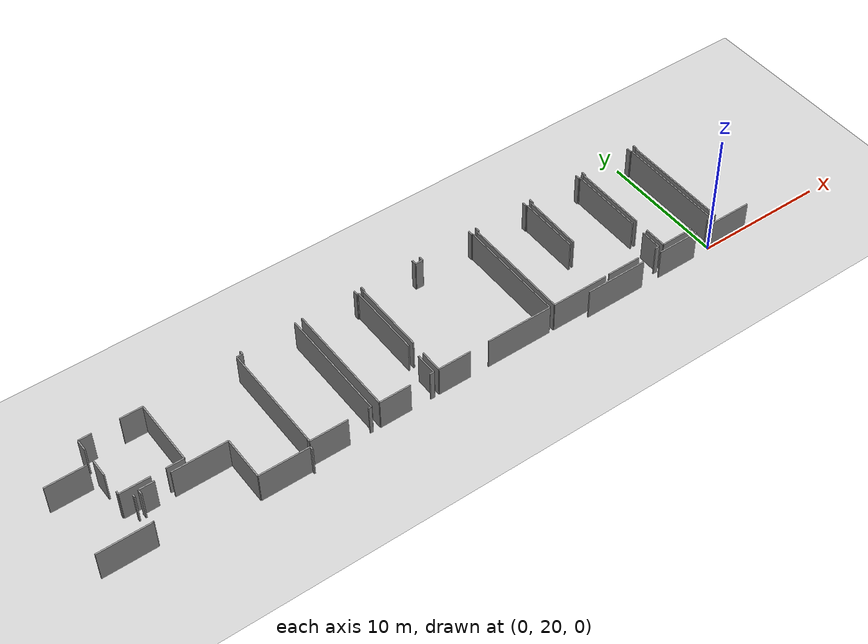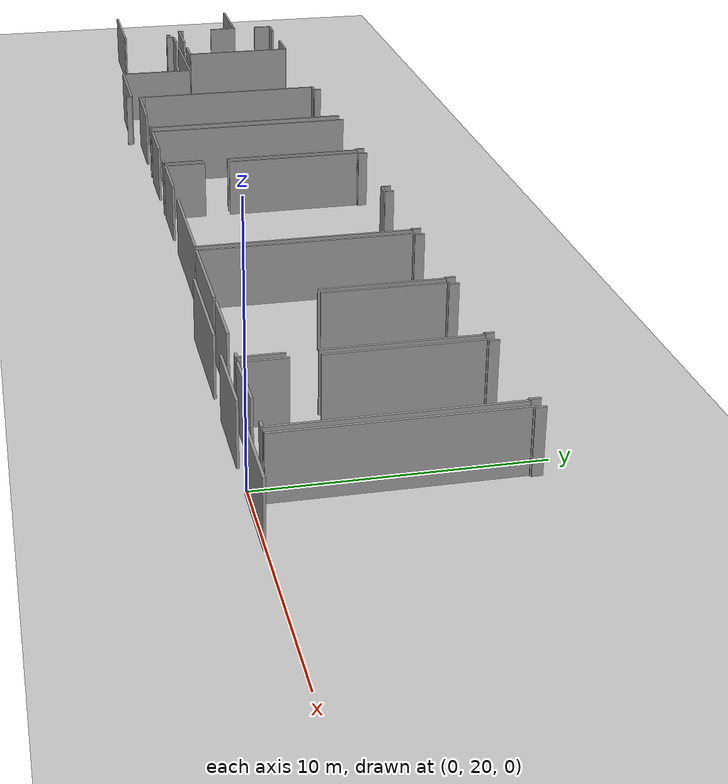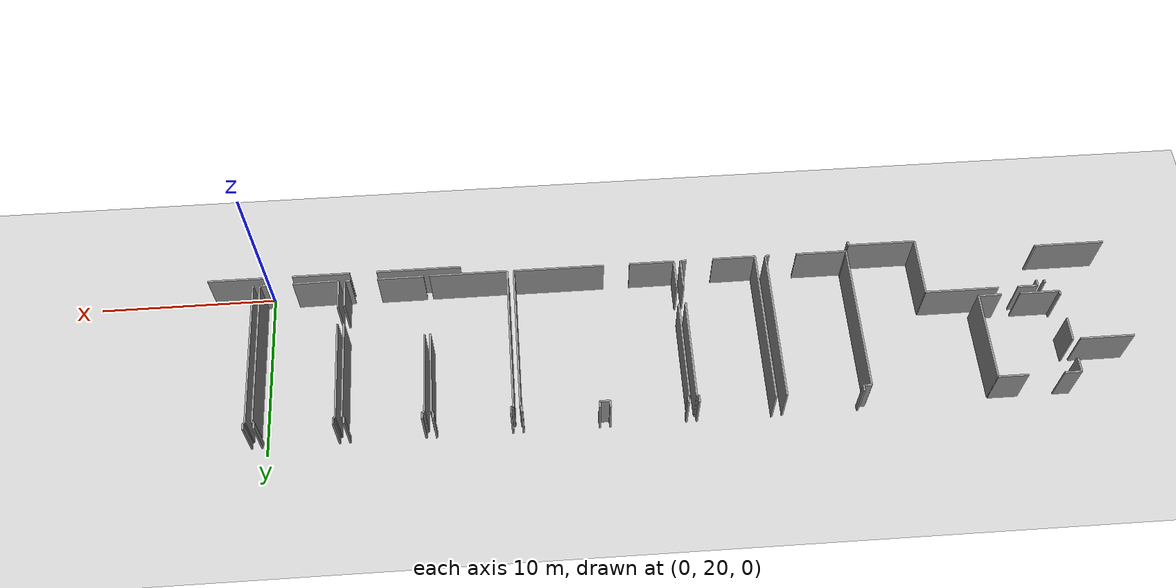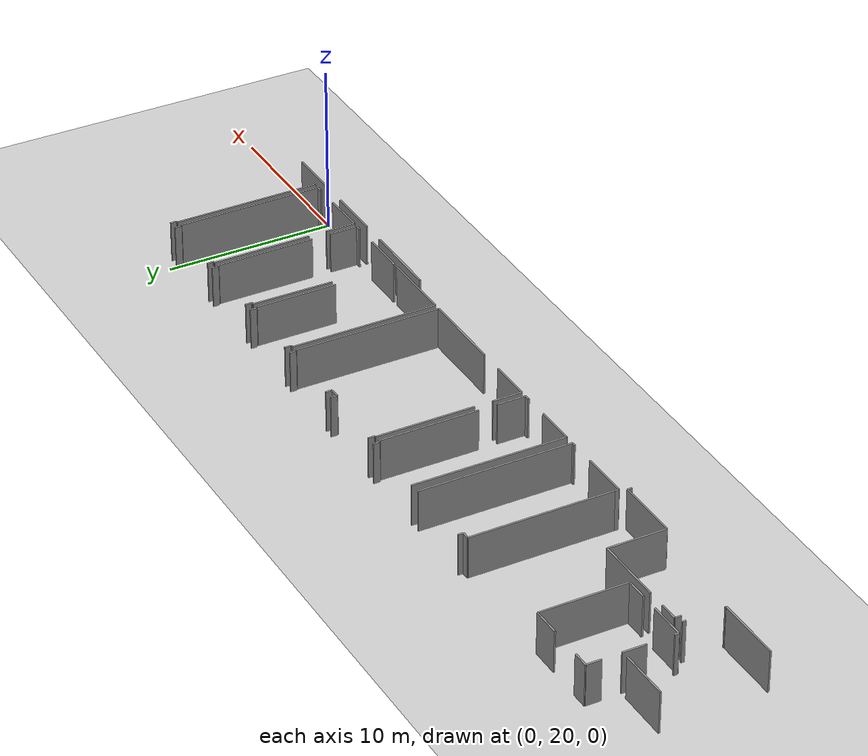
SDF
<sdf version="1.6">
 <world name="default">
  <model name="ground_plane">
   <static>1</static>
   <link name="link">
    <collision name="collision">
     <geometry><plane><normal>0 0 1</normal><size>100 100</size></plane></geometry>
     <surface><friction><ode><mu>100</mu><mu2>50</mu2></ode></friction></surface>
    </collision>
    <visual name="visual">
     <cast_shadows>0</cast_shadows>
     <geometry><plane><normal>0 0 1</normal><size>100 100</size></plane></geometry>
     <material>
      <script><uri>file://media/materials/scripts/gazebo.material</uri><name>Gazebo/Grey</name></script>
     </material>
    </visual>
   </link>
  </model>
  <model name="50010535_PLAN1">
   <static>1</static>
   <link name="Wall_202">
    <collision name="Wall_202_Collision">
     <geometry><box><size>3.04417750192 0.1 2.5</size></box></geometry>
     <pose>1.52208875096 0 1.25 0 0 0</pose>
    </collision>
    <visual name="Wall_202_Visual">
     <pose>1.52208875096 0 1.25 0 0 0</pose>
     <geometry><box><size>3.04417750192 0.1 2.5</size></box></geometry>
     <material>
      <script><uri>file://media/materials/scripts/gazebo.material</uri><name>Gazebo/Grey</name></script>
      <ambient>1 1 1 1</ambient>
     </material>
    </visual>
    <pose>57.3066587041 -2.45509933102 0 0 0 -3.13825348911</pose>
   </link>
   <link name="Wall_208">
    <collision name="Wall_208_Collision">
     <geometry><box><size>0.948647738607 0.1 2.5</size></box></geometry>
     <pose>0.474323869304 0 1.25 0 0 0</pose>
    </collision>
    <visual name="Wall_208_Visual">
     <pose>0.474323869304 0 1.25 0 0 0</pose>
     <geometry><box><size>0.948647738607 0.1 2.5</size></box></geometry>
     <material>
      <script><uri>file://media/materials/scripts/gazebo.material</uri><name>Gazebo/Grey</name></script>
      <ambient>1 1 1 1</ambient>
     </material>
    </visual>
    <pose>57.7429909214 -0.397451128632 0 0 0 0.0</pose>
   </link>
   <link name="Wall_209">
    <collision name="Wall_209_Collision">
     <geometry><box><size>1.6945039167 0.1 2.5</size></box></geometry>
     <pose>0.847251958349 0 1.25 0 0 0</pose>
    </collision>
    <visual name="Wall_209_Visual">
     <pose>0.847251958349 0 1.25 0 0 0</pose>
     <geometry><box><size>1.6945039167 0.1 2.5</size></box></geometry>
     <material>
      <script><uri>file://media/materials/scripts/gazebo.material</uri><name>Gazebo/Grey</name></script>
      <ambient>1 1 1 1</ambient>
     </material>
    </visual>
    <pose>60.6890592937 -0.397451128632 0 0 0 0.0</pose>
   </link>
   <link name="Wall_210">
    <collision name="Wall_210_Collision">
     <geometry><box><size>5.19278539799 0.1 2.5</size></box></geometry>
     <pose>2.596392699 0 1.25 0 0 0</pose>
    </collision>
    <visual name="Wall_210_Visual">
     <pose>2.596392699 0 1.25 0 0 0</pose>
     <geometry><box><size>5.19278539799 0.1 2.5</size></box></geometry>
     <material>
      <script><uri>file://media/materials/scripts/gazebo.material</uri><name>Gazebo/Grey</name></script>
      <ambient>1 1 1 1</ambient>
     </material>
    </visual>
    <pose>62.3835632104 -0.397451128632 0 0 0 -1.57079632679</pose>
   </link>
   <link name="Wall_211">
    <collision name="Wall_211_Collision">
     <geometry><box><size>1.31407914716 0.1 2.5</size></box></geometry>
     <pose>0.657039573579 0 1.25 0 0 0</pose>
    </collision>
    <visual name="Wall_211_Visual">
     <pose>0.657039573579 0 1.25 0 0 0</pose>
     <geometry><box><size>1.31407914716 0.1 2.5</size></box></geometry>
     <material>
      <script><uri>file://media/materials/scripts/gazebo.material</uri><name>Gazebo/Grey</name></script>
      <ambient>1 1 1 1</ambient>
     </material>
    </visual>
    <pose>62.3835632104 -5.59023652662 0 0 0 3.14159265359</pose>
   </link>
   <link name="Wall_212">
    <collision name="Wall_212_Collision">
     <geometry><box><size>2.25764439051 0.1 2.5</size></box></geometry>
     <pose>1.12882219526 0 1.25 0 0 0</pose>
    </collision>
    <visual name="Wall_212_Visual">
     <pose>1.12882219526 0 1.25 0 0 0</pose>
     <geometry><box><size>2.25764439051 0.1 2.5</size></box></geometry>
     <material>
      <script><uri>file://media/materials/scripts/gazebo.material</uri><name>Gazebo/Grey</name></script>
      <ambient>1 1 1 1</ambient>
     </material>
    </visual>
    <pose>60.0039389338 -5.59023652662 0 0 0 3.14159265359</pose>
   </link>
   <link name="Wall_213">
    <collision name="Wall_213_Collision">
     <geometry><box><size>0.24192677395 0.1 2.5</size></box></geometry>
     <pose>0.120963386975 0 1.25 0 0 0</pose>
    </collision>
    <visual name="Wall_213_Visual">
     <pose>0.120963386975 0 1.25 0 0 0</pose>
     <geometry><box><size>0.24192677395 0.1 2.5</size></box></geometry>
     <material>
      <script><uri>file://media/materials/scripts/gazebo.material</uri><name>Gazebo/Grey</name></script>
      <ambient>1 1 1 1</ambient>
     </material>
    </visual>
    <pose>57.7462945433 -5.59023652662 0 0 0 1.57079632679</pose>
   </link>
   <link name="Wall_214">
    <collision name="Wall_214_Collision">
     <geometry><box><size>1.39107895021 0.1 2.5</size></box></geometry>
     <pose>0.695539475105 0 1.25 0 0 0</pose>
    </collision>
    <visual name="Wall_214_Visual">
     <pose>0.695539475105 0 1.25 0 0 0</pose>
     <geometry><box><size>1.39107895021 0.1 2.5</size></box></geometry>
     <material>
      <script><uri>file://media/materials/scripts/gazebo.material</uri><name>Gazebo/Grey</name></script>
      <ambient>1 1 1 1</ambient>
     </material>
    </visual>
    <pose>57.7462945433 -3.79154145728 0 0 0 1.57079632679</pose>
   </link>
   <link name="Wall_215">
    <collision name="Wall_215_Collision">
     <geometry><box><size>0.888172189174 0.1 2.5</size></box></geometry>
     <pose>0.444086094587 0 1.25 0 0 0</pose>
    </collision>
    <visual name="Wall_215_Visual">
     <pose>0.444086094587 0 1.25 0 0 0</pose>
     <geometry><box><size>0.888172189174 0.1 2.5</size></box></geometry>
     <material>
      <script><uri>file://media/materials/scripts/gazebo.material</uri><name>Gazebo/Grey</name></script>
      <ambient>1 1 1 1</ambient>
     </material>
    </visual>
    <pose>57.7462945433 -1.28561717375 0 0 0 1.57451590907</pose>
   </link>
   <link name="Wall_218">
    <collision name="Wall_218_Collision">
     <geometry><box><size>0.207365806243 0.1 2.5</size></box></geometry>
     <pose>0.103682903121 0 1.25 0 0 0</pose>
    </collision>
    <visual name="Wall_218_Visual">
     <pose>0.103682903121 0 1.25 0 0 0</pose>
     <geometry><box><size>0.207365806243 0.1 2.5</size></box></geometry>
     <material>
      <script><uri>file://media/materials/scripts/gazebo.material</uri><name>Gazebo/Grey</name></script>
      <ambient>1 1 1 1</ambient>
     </material>
    </visual>
    <pose>58.4403092698 -6.18920859196 0 0 0 -1.57079632679</pose>
   </link>
   <link name="Wall_219">
    <collision name="Wall_219_Collision">
     <geometry><box><size>0.0764915535282 0.1 2.5</size></box></geometry>
     <pose>0.0382457767641 0 1.25 0 0 0</pose>
    </collision>
    <visual name="Wall_219_Visual">
     <pose>0.0382457767641 0 1.25 0 0 0</pose>
     <geometry><box><size>0.0764915535282 0.1 2.5</size></box></geometry>
     <material>
      <script><uri>file://media/materials/scripts/gazebo.material</uri><name>Gazebo/Grey</name></script>
      <ambient>1 1 1 1</ambient>
     </material>
    </visual>
    <pose>58.4403092698 -8.62753568865 0 0 0 -1.57079632679</pose>
   </link>
   <link name="Wall_220">
    <collision name="Wall_220_Collision">
     <geometry><box><size>3.99154492599 0.1 2.5</size></box></geometry>
     <pose>1.99577246299 0 1.25 0 0 0</pose>
    </collision>
    <visual name="Wall_220_Visual">
     <pose>1.99577246299 0 1.25 0 0 0</pose>
     <geometry><box><size>3.99154492599 0.1 2.5</size></box></geometry>
     <material>
      <script><uri>file://media/materials/scripts/gazebo.material</uri><name>Gazebo/Grey</name></script>
      <ambient>1 1 1 1</ambient>
     </material>
    </visual>
    <pose>58.4403092698 -8.70402724217 0 0 0 -3.13968267947</pose>
   </link>
   <link name="Wall_232">
    <collision name="Wall_232_Collision">
     <geometry><box><size>0.374834024764 0.1 2.5</size></box></geometry>
     <pose>0.187417012382 0 1.25 0 0 0</pose>
    </collision>
    <visual name="Wall_232_Visual">
     <pose>0.187417012382 0 1.25 0 0 0</pose>
     <geometry><box><size>0.374834024764 0.1 2.5</size></box></geometry>
     <material>
      <script><uri>file://media/materials/scripts/gazebo.material</uri><name>Gazebo/Grey</name></script>
      <ambient>1 1 1 1</ambient>
     </material>
    </visual>
    <pose>58.8855358538 -6.4108053849 0 0 0 1.57079632679</pose>
   </link>
   <link name="Wall_233">
    <collision name="Wall_233_Collision">
     <geometry><box><size>1.13365056575 0.1 2.5</size></box></geometry>
     <pose>0.566825282873 0 1.25 0 0 0</pose>
    </collision>
    <visual name="Wall_233_Visual">
     <pose>0.566825282873 0 1.25 0 0 0</pose>
     <geometry><box><size>1.13365056575 0.1 2.5</size></box></geometry>
     <material>
      <script><uri>file://media/materials/scripts/gazebo.material</uri><name>Gazebo/Grey</name></script>
      <ambient>1 1 1 1</ambient>
     </material>
    </visual>
    <pose>58.8855358538 -6.03597136014 0 0 0 0.0</pose>
   </link>
   <link name="Wall_234">
    <collision name="Wall_234_Collision">
     <geometry><box><size>4.17450747444 0.1 2.5</size></box></geometry>
     <pose>2.08725373722 0 1.25 0 0 0</pose>
    </collision>
    <visual name="Wall_234_Visual">
     <pose>2.08725373722 0 1.25 0 0 0</pose>
     <geometry><box><size>4.17450747444 0.1 2.5</size></box></geometry>
     <material>
      <script><uri>file://media/materials/scripts/gazebo.material</uri><name>Gazebo/Grey</name></script>
      <ambient>1 1 1 1</ambient>
     </material>
    </visual>
    <pose>61.1475003653 -6.03597136014 0 0 0 0.0</pose>
   </link>
   <link name="Wall_235">
    <collision name="Wall_235_Collision">
     <geometry><box><size>3.45508027166 0.1 2.5</size></box></geometry>
     <pose>1.72754013583 0 1.25 0 0 0</pose>
    </collision>
    <visual name="Wall_235_Visual">
     <pose>1.72754013583 0 1.25 0 0 0</pose>
     <geometry><box><size>3.45508027166 0.1 2.5</size></box></geometry>
     <material>
      <script><uri>file://media/materials/scripts/gazebo.material</uri><name>Gazebo/Grey</name></script>
      <ambient>1 1 1 1</ambient>
     </material>
    </visual>
    <pose>65.3220078397 -6.03597136014 0 0 0 -1.57079632679</pose>
   </link>
   <link name="Wall_236">
    <collision name="Wall_236_Collision">
     <geometry><box><size>3.85253140029 0.1 2.5</size></box></geometry>
     <pose>1.92626570015 0 1.25 0 0 0</pose>
    </collision>
    <visual name="Wall_236_Visual">
     <pose>1.92626570015 0 1.25 0 0 0</pose>
     <geometry><box><size>3.85253140029 0.1 2.5</size></box></geometry>
     <material>
      <script><uri>file://media/materials/scripts/gazebo.material</uri><name>Gazebo/Grey</name></script>
      <ambient>1 1 1 1</ambient>
     </material>
    </visual>
    <pose>65.3220078397 -9.4910516318 0 0 0 0.0</pose>
   </link>
   <link name="Wall_237">
    <collision name="Wall_237_Collision">
     <geometry><box><size>0.247263393963 0.1 2.5</size></box></geometry>
     <pose>0.123631696982 0 1.25 0 0 0</pose>
    </collision>
    <visual name="Wall_237_Visual">
     <pose>0.123631696982 0 1.25 0 0 0</pose>
     <geometry><box><size>0.247263393963 0.1 2.5</size></box></geometry>
     <material>
      <script><uri>file://media/materials/scripts/gazebo.material</uri><name>Gazebo/Grey</name></script>
      <ambient>1 1 1 1</ambient>
     </material>
    </visual>
    <pose>69.17453924 -9.4910516318 0 0 0 -1.57079632679</pose>
   </link>
   <link name="Wall_453">
    <collision name="Wall_453_Collision">
     <geometry><box><size>8.47811032827 0.1 2.5</size></box></geometry>
     <pose>4.23905516413 0 1.25 0 0 0</pose>
    </collision>
    <visual name="Wall_453_Visual">
     <pose>4.23905516413 0 1.25 0 0 0</pose>
     <geometry><box><size>8.47811032827 0.1 2.5</size></box></geometry>
     <material>
      <script><uri>file://media/materials/scripts/gazebo.material</uri><name>Gazebo/Grey</name></script>
      <ambient>1 1 1 1</ambient>
     </material>
    </visual>
    <pose>69.3796179234 -8.85218197874 0 0 0 1.57079632679</pose>
   </link>
   <link name="Wall_454">
    <collision name="Wall_454_Collision">
     <geometry><box><size>0.441160587791 0.1 2.5</size></box></geometry>
     <pose>0.220580293895 0 1.25 0 0 0</pose>
    </collision>
    <visual name="Wall_454_Visual">
     <pose>0.220580293895 0 1.25 0 0 0</pose>
     <geometry><box><size>0.441160587791 0.1 2.5</size></box></geometry>
     <material>
      <script><uri>file://media/materials/scripts/gazebo.material</uri><name>Gazebo/Grey</name></script>
      <ambient>1 1 1 1</ambient>
     </material>
    </visual>
    <pose>69.3796179234 -0.374071650477 0 0 0 0.0</pose>
   </link>
   <link name="Wall_455">
    <collision name="Wall_455_Collision">
     <geometry><box><size>0.316893578903 0.1 2.5</size></box></geometry>
     <pose>0.158446789451 0 1.25 0 0 0</pose>
    </collision>
    <visual name="Wall_455_Visual">
     <pose>0.158446789451 0 1.25 0 0 0</pose>
     <geometry><box><size>0.316893578903 0.1 2.5</size></box></geometry>
     <material>
      <script><uri>file://media/materials/scripts/gazebo.material</uri><name>Gazebo/Grey</name></script>
      <ambient>1 1 1 1</ambient>
     </material>
    </visual>
    <pose>69.8207785112 -0.374071650477 0 0 0 1.57079632679</pose>
   </link>
   <link name="Wall_456">
    <collision name="Wall_456_Collision">
     <geometry><box><size>9.0315940611 0.1 2.5</size></box></geometry>
     <pose>4.51579703055 0 1.25 0 0 0</pose>
    </collision>
    <visual name="Wall_456_Visual">
     <pose>4.51579703055 0 1.25 0 0 0</pose>
     <geometry><box><size>9.0315940611 0.1 2.5</size></box></geometry>
     <material>
      <script><uri>file://media/materials/scripts/gazebo.material</uri><name>Gazebo/Grey</name></script>
      <ambient>1 1 1 1</ambient>
     </material>
    </visual>
    <pose>74.0621207982 -0.0571780715742 0 0 0 -1.57079632679</pose>
   </link>
   <link name="Wall_457">
    <collision name="Wall_457_Collision">
     <geometry><box><size>0.234557155836 0.1 2.5</size></box></geometry>
     <pose>0.117278577918 0 1.25 0 0 0</pose>
    </collision>
    <visual name="Wall_457_Visual">
     <pose>0.117278577918 0 1.25 0 0 0</pose>
     <geometry><box><size>0.234557155836 0.1 2.5</size></box></geometry>
     <material>
      <script><uri>file://media/materials/scripts/gazebo.material</uri><name>Gazebo/Grey</name></script>
      <ambient>1 1 1 1</ambient>
     </material>
    </visual>
    <pose>74.0621207982 -9.08877213268 0 0 0 3.14159265359</pose>
   </link>
   <link name="Wall_458">
    <collision name="Wall_458_Collision">
     <geometry><box><size>2.90134241406 0.1 2.5</size></box></geometry>
     <pose>1.45067120703 0 1.25 0 0 0</pose>
    </collision>
    <visual name="Wall_458_Visual">
     <pose>1.45067120703 0 1.25 0 0 0</pose>
     <geometry><box><size>2.90134241406 0.1 2.5</size></box></geometry>
     <material>
      <script><uri>file://media/materials/scripts/gazebo.material</uri><name>Gazebo/Grey</name></script>
      <ambient>1 1 1 1</ambient>
     </material>
    </visual>
    <pose>72.2728283451 -9.08877213268 0 0 0 3.14159265359</pose>
   </link>
   <link name="Wall_459">
    <collision name="Wall_459_Collision">
     <geometry><box><size>0.236729867655 0.1 2.5</size></box></geometry>
     <pose>0.118364933827 0 1.25 0 0 0</pose>
    </collision>
    <visual name="Wall_459_Visual">
     <pose>0.118364933827 0 1.25 0 0 0</pose>
     <geometry><box><size>0.236729867655 0.1 2.5</size></box></geometry>
     <material>
      <script><uri>file://media/materials/scripts/gazebo.material</uri><name>Gazebo/Grey</name></script>
      <ambient>1 1 1 1</ambient>
     </material>
    </visual>
    <pose>69.371485931 -9.08877213268 0 0 0 1.53643820948</pose>
   </link>
   <link name="Wall_460">
    <collision name="Wall_460_Collision">
     <geometry><box><size>9.09461700222 0.1 2.5</size></box></geometry>
     <pose>4.54730850111 0 1.25 0 0 0</pose>
    </collision>
    <visual name="Wall_460_Visual">
     <pose>4.54730850111 0 1.25 0 0 0</pose>
     <geometry><box><size>9.09461700222 0.1 2.5</size></box></geometry>
     <material>
      <script><uri>file://media/materials/scripts/gazebo.material</uri><name>Gazebo/Grey</name></script>
      <ambient>1 1 1 1</ambient>
     </material>
    </visual>
    <pose>74.665921234 -9.09715824984 0 0 0 1.57079632679</pose>
   </link>
   <link name="Wall_461">
    <collision name="Wall_461_Collision">
     <geometry><box><size>0.374325775239 0.1 2.5</size></box></geometry>
     <pose>0.18716288762 0 1.25 0 0 0</pose>
    </collision>
    <visual name="Wall_461_Visual">
     <pose>0.18716288762 0 1.25 0 0 0</pose>
     <geometry><box><size>0.374325775239 0.1 2.5</size></box></geometry>
     <material>
      <script><uri>file://media/materials/scripts/gazebo.material</uri><name>Gazebo/Grey</name></script>
      <ambient>1 1 1 1</ambient>
     </material>
    </visual>
    <pose>78.8460194533 -0.00254124762553 0 0 0 -1.57079632679</pose>
   </link>
   <link name="Wall_462">
    <collision name="Wall_462_Collision">
     <geometry><box><size>0.119946887925 0.1 2.5</size></box></geometry>
     <pose>0.0599734439623 0 1.25 0 0 0</pose>
    </collision>
    <visual name="Wall_462_Visual">
     <pose>0.0599734439623 0 1.25 0 0 0</pose>
     <geometry><box><size>0.119946887925 0.1 2.5</size></box></geometry>
     <material>
      <script><uri>file://media/materials/scripts/gazebo.material</uri><name>Gazebo/Grey</name></script>
      <ambient>1 1 1 1</ambient>
     </material>
    </visual>
    <pose>78.8460194533 -0.376867022865 0 0 0 0.0</pose>
   </link>
   <link name="Wall_463">
    <collision name="Wall_463_Collision">
     <geometry><box><size>5.8923908693 0.1 2.5</size></box></geometry>
     <pose>2.94619543465 0 1.25 0 0 0</pose>
    </collision>
    <visual name="Wall_463_Visual">
     <pose>2.94619543465 0 1.25 0 0 0</pose>
     <geometry><box><size>5.8923908693 0.1 2.5</size></box></geometry>
     <material>
      <script><uri>file://media/materials/scripts/gazebo.material</uri><name>Gazebo/Grey</name></script>
      <ambient>1 1 1 1</ambient>
     </material>
    </visual>
    <pose>78.9659663412 -0.376867022865 0 0 0 -1.57079632679</pose>
   </link>
   <link name="Wall_464">
    <collision name="Wall_464_Collision">
     <geometry><box><size>1.70924315293 0.1 2.5</size></box></geometry>
     <pose>0.854621576463 0 1.25 0 0 0</pose>
    </collision>
    <visual name="Wall_464_Visual">
     <pose>0.854621576463 0 1.25 0 0 0</pose>
     <geometry><box><size>1.70924315293 0.1 2.5</size></box></geometry>
     <material>
      <script><uri>file://media/materials/scripts/gazebo.material</uri><name>Gazebo/Grey</name></script>
      <ambient>1 1 1 1</ambient>
     </material>
    </visual>
    <pose>78.9659663412 -7.3764794826 0 0 0 -1.57079632679</pose>
   </link>
   <link name="Wall_465">
    <collision name="Wall_465_Collision">
     <geometry><box><size>0.32858331798 0.1 2.5</size></box></geometry>
     <pose>0.16429165899 0 1.25 0 0 0</pose>
    </collision>
    <visual name="Wall_465_Visual">
     <pose>0.16429165899 0 1.25 0 0 0</pose>
     <geometry><box><size>0.32858331798 0.1 2.5</size></box></geometry>
     <material>
      <script><uri>file://media/materials/scripts/gazebo.material</uri><name>Gazebo/Grey</name></script>
      <ambient>1 1 1 1</ambient>
     </material>
    </visual>
    <pose>78.9659663412 -9.08572263553 0 0 0 3.14159265359</pose>
   </link>
   <link name="Wall_466">
    <collision name="Wall_466_Collision">
     <geometry><box><size>2.44216574231 0.1 2.5</size></box></geometry>
     <pose>1.22108287116 0 1.25 0 0 0</pose>
    </collision>
    <visual name="Wall_466_Visual">
     <pose>1.22108287116 0 1.25 0 0 0</pose>
     <geometry><box><size>2.44216574231 0.1 2.5</size></box></geometry>
     <material>
      <script><uri>file://media/materials/scripts/gazebo.material</uri><name>Gazebo/Grey</name></script>
      <ambient>1 1 1 1</ambient>
     </material>
    </visual>
    <pose>77.1080602022 -9.08572263553 0 0 0 -3.13691006555</pose>
   </link>
   <link name="Wall_467">
    <collision name="Wall_467_Collision">
     <geometry><box><size>1.75041136446 0.1 2.5</size></box></geometry>
     <pose>0.87520568223 0 1.25 0 0 0</pose>
    </collision>
    <visual name="Wall_467_Visual">
     <pose>0.87520568223 0 1.25 0 0 0</pose>
     <geometry><box><size>1.75041136446 0.1 2.5</size></box></geometry>
     <material>
      <script><uri>file://media/materials/scripts/gazebo.material</uri><name>Gazebo/Grey</name></script>
      <ambient>1 1 1 1</ambient>
     </material>
    </visual>
    <pose>79.357826725 -9.07860714218 0 0 0 1.57079632679</pose>
   </link>
   <link name="Wall_468">
    <collision name="Wall_468_Collision">
     <geometry><box><size>5.84537778823 0.1 2.5</size></box></geometry>
     <pose>2.92268889411 0 1.25 0 0 0</pose>
    </collision>
    <visual name="Wall_468_Visual">
     <pose>2.92268889411 0 1.25 0 0 0</pose>
     <geometry><box><size>5.84537778823 0.1 2.5</size></box></geometry>
     <material>
      <script><uri>file://media/materials/scripts/gazebo.material</uri><name>Gazebo/Grey</name></script>
      <ambient>1 1 1 1</ambient>
     </material>
    </visual>
    <pose>79.357826725 -6.23952529494 0 0 0 1.57079632679</pose>
   </link>
   <link name="Wall_469">
    <collision name="Wall_469_Collision">
     <geometry><box><size>0.0726796820899 0.1 2.5</size></box></geometry>
     <pose>0.036339841045 0 1.25 0 0 0</pose>
    </collision>
    <visual name="Wall_469_Visual">
     <pose>0.036339841045 0 1.25 0 0 0</pose>
     <geometry><box><size>0.0726796820899 0.1 2.5</size></box></geometry>
     <material>
      <script><uri>file://media/materials/scripts/gazebo.material</uri><name>Gazebo/Grey</name></script>
      <ambient>1 1 1 1</ambient>
     </material>
    </visual>
    <pose>79.357826725 -0.394147506718 0 0 0 0.0</pose>
   </link>
   <link name="Wall_470">
    <collision name="Wall_470_Collision">
     <geometry><box><size>0.394147506718 0.1 2.5</size></box></geometry>
     <pose>0.197073753359 0 1.25 0 0 0</pose>
    </collision>
    <visual name="Wall_470_Visual">
     <pose>0.197073753359 0 1.25 0 0 0</pose>
     <geometry><box><size>0.394147506718 0.1 2.5</size></box></geometry>
     <material>
      <script><uri>file://media/materials/scripts/gazebo.material</uri><name>Gazebo/Grey</name></script>
      <ambient>1 1 1 1</ambient>
     </material>
    </visual>
    <pose>79.4305064071 -0.394147506718 0 0 0 1.57079632679</pose>
   </link>
   <link name="Wall_471">
    <collision name="Wall_471_Collision">
     <geometry><box><size>0.393385132431 0.1 2.5</size></box></geometry>
     <pose>0.196692566215 0 1.25 0 0 0</pose>
    </collision>
    <visual name="Wall_471_Visual">
     <pose>0.196692566215 0 1.25 0 0 0</pose>
     <geometry><box><size>0.393385132431 0.1 2.5</size></box></geometry>
     <material>
      <script><uri>file://media/materials/scripts/gazebo.material</uri><name>Gazebo/Grey</name></script>
      <ambient>1 1 1 1</ambient>
     </material>
    </visual>
    <pose>83.6784559379 -0.0 0 0 0 -1.57079632679</pose>
   </link>
   <link name="Wall_472">
    <collision name="Wall_472_Collision">
     <geometry><box><size>0.578387959569 0.1 2.5</size></box></geometry>
     <pose>0.289193979784 0 1.25 0 0 0</pose>
    </collision>
    <visual name="Wall_472_Visual">
     <pose>0.289193979784 0 1.25 0 0 0</pose>
     <geometry><box><size>0.578387959569 0.1 2.5</size></box></geometry>
     <material>
      <script><uri>file://media/materials/scripts/gazebo.material</uri><name>Gazebo/Grey</name></script>
      <ambient>1 1 1 1</ambient>
     </material>
    </visual>
    <pose>83.6784559379 -0.393385132431 0 0 0 0.0</pose>
   </link>
   <link name="Wall_473">
    <collision name="Wall_473_Collision">
     <geometry><box><size>0.383982516216 0.1 2.5</size></box></geometry>
     <pose>0.191991258108 0 1.25 0 0 0</pose>
    </collision>
    <visual name="Wall_473_Visual">
     <pose>0.191991258108 0 1.25 0 0 0</pose>
     <geometry><box><size>0.383982516216 0.1 2.5</size></box></geometry>
     <material>
      <script><uri>file://media/materials/scripts/gazebo.material</uri><name>Gazebo/Grey</name></script>
      <ambient>1 1 1 1</ambient>
     </material>
    </visual>
    <pose>84.2568438975 -0.393385132431 0 0 0 1.57079632679</pose>
   </link>
   <link name="Wall_474">
    <collision name="Wall_474_Collision">
     <geometry><box><size>0.375850523815 0.1 2.5</size></box></geometry>
     <pose>0.187925261907 0 1.25 0 0 0</pose>
    </collision>
    <visual name="Wall_474_Visual">
     <pose>0.187925261907 0 1.25 0 0 0</pose>
     <geometry><box><size>0.375850523815 0.1 2.5</size></box></geometry>
     <material>
      <script><uri>file://media/materials/scripts/gazebo.material</uri><name>Gazebo/Grey</name></script>
      <ambient>1 1 1 1</ambient>
     </material>
    </visual>
    <pose>88.4819221997 -0.00940261621443 0 0 0 -1.57079632679</pose>
   </link>
   <link name="Wall_475">
    <collision name="Wall_475_Collision">
     <geometry><box><size>0.0744585554278 0.1 2.5</size></box></geometry>
     <pose>0.0372292777139 0 1.25 0 0 0</pose>
    </collision>
    <visual name="Wall_475_Visual">
     <pose>0.0372292777139 0 1.25 0 0 0</pose>
     <geometry><box><size>0.0744585554278 0.1 2.5</size></box></geometry>
     <material>
      <script><uri>file://media/materials/scripts/gazebo.material</uri><name>Gazebo/Grey</name></script>
      <ambient>1 1 1 1</ambient>
     </material>
    </visual>
    <pose>88.4819221997 -0.385253140029 0 0 0 0.0</pose>
   </link>
   <link name="Wall_476">
    <collision name="Wall_476_Collision">
     <geometry><box><size>8.69106687928 0.1 2.5</size></box></geometry>
     <pose>4.34553343964 0 1.25 0 0 0</pose>
    </collision>
    <visual name="Wall_476_Visual">
     <pose>4.34553343964 0 1.25 0 0 0</pose>
     <geometry><box><size>8.69106687928 0.1 2.5</size></box></geometry>
     <material>
      <script><uri>file://media/materials/scripts/gazebo.material</uri><name>Gazebo/Grey</name></script>
      <ambient>1 1 1 1</ambient>
     </material>
    </visual>
    <pose>88.5563807551 -0.385253140029 0 0 0 -1.57079632679</pose>
   </link>
   <link name="Wall_477">
    <collision name="Wall_477_Collision">
     <geometry><box><size>5.15822443028 0.1 2.5</size></box></geometry>
     <pose>2.57911221514 0 1.25 0 0 0</pose>
    </collision>
    <visual name="Wall_477_Visual">
     <pose>2.57911221514 0 1.25 0 0 0</pose>
     <geometry><box><size>5.15822443028 0.1 2.5</size></box></geometry>
     <material>
      <script><uri>file://media/materials/scripts/gazebo.material</uri><name>Gazebo/Grey</name></script>
      <ambient>1 1 1 1</ambient>
     </material>
    </visual>
    <pose>88.5563807551 -9.07632001931 0 0 0 3.14159265359</pose>
   </link>
   <link name="Wall_478">
    <collision name="Wall_478_Collision">
     <geometry><box><size>2.56157862756 0.1 2.5</size></box></geometry>
     <pose>1.28078931378 0 1.25 0 0 0</pose>
    </collision>
    <visual name="Wall_478_Visual">
     <pose>1.28078931378 0 1.25 0 0 0</pose>
     <geometry><box><size>2.56157862756 0.1 2.5</size></box></geometry>
     <material>
      <script><uri>file://media/materials/scripts/gazebo.material</uri><name>Gazebo/Grey</name></script>
      <ambient>1 1 1 1</ambient>
     </material>
    </visual>
    <pose>81.9194043316 -9.07632001931 0 0 0 -3.14069979668</pose>
   </link>
   <link name="Wall_479">
    <collision name="Wall_479_Collision">
     <geometry><box><size>8.67785239163 0.1 2.5</size></box></geometry>
     <pose>4.33892619582 0 1.25 0 0 0</pose>
    </collision>
    <visual name="Wall_479_Visual">
     <pose>4.33892619582 0 1.25 0 0 0</pose>
     <geometry><box><size>8.67785239163 0.1 2.5</size></box></geometry>
     <material>
      <script><uri>file://media/materials/scripts/gazebo.material</uri><name>Gazebo/Grey</name></script>
      <ambient>1 1 1 1</ambient>
     </material>
    </visual>
    <pose>88.9347725266 -9.08165663933 0 0 0 1.57079632679</pose>
   </link>
   <link name="Wall_480">
    <collision name="Wall_480_Collision">
     <geometry><box><size>0.133161375577 0.1 2.5</size></box></geometry>
     <pose>0.0665806877887 0 1.25 0 0 0</pose>
    </collision>
    <visual name="Wall_480_Visual">
     <pose>0.0665806877887 0 1.25 0 0 0</pose>
     <geometry><box><size>0.133161375577 0.1 2.5</size></box></geometry>
     <material>
      <script><uri>file://media/materials/scripts/gazebo.material</uri><name>Gazebo/Grey</name></script>
      <ambient>1 1 1 1</ambient>
     </material>
    </visual>
    <pose>88.9347725266 -0.403804247695 0 0 0 0.0</pose>
   </link>
   <link name="Wall_481">
    <collision name="Wall_481_Collision">
     <geometry><box><size>0.398975877207 0.1 2.5</size></box></geometry>
     <pose>0.199487938603 0 1.25 0 0 0</pose>
    </collision>
    <visual name="Wall_481_Visual">
     <pose>0.199487938603 0 1.25 0 0 0</pose>
     <geometry><box><size>0.398975877207 0.1 2.5</size></box></geometry>
     <material>
      <script><uri>file://media/materials/scripts/gazebo.material</uri><name>Gazebo/Grey</name></script>
      <ambient>1 1 1 1</ambient>
     </material>
    </visual>
    <pose>89.0679339021 -0.403804247695 0 0 0 1.57079632679</pose>
   </link>
   <link name="Wall_482">
    <collision name="Wall_482_Collision">
     <geometry><box><size>0.387540262892 0.1 2.5</size></box></geometry>
     <pose>0.193770131446 0 1.25 0 0 0</pose>
    </collision>
    <visual name="Wall_482_Visual">
     <pose>0.193770131446 0 1.25 0 0 0</pose>
     <geometry><box><size>0.387540262892 0.1 2.5</size></box></geometry>
     <material>
      <script><uri>file://media/materials/scripts/gazebo.material</uri><name>Gazebo/Grey</name></script>
      <ambient>1 1 1 1</ambient>
     </material>
    </visual>
    <pose>93.2810683405 -0.00482837048849 0 0 0 -1.57079632679</pose>
   </link>
   <link name="Wall_483">
    <collision name="Wall_483_Collision">
     <geometry><box><size>0.0861482945052 0.1 2.5</size></box></geometry>
     <pose>0.0430741472526 0 1.25 0 0 0</pose>
    </collision>
    <visual name="Wall_483_Visual">
     <pose>0.0430741472526 0 1.25 0 0 0</pose>
     <geometry><box><size>0.0861482945052 0.1 2.5</size></box></geometry>
     <material>
      <script><uri>file://media/materials/scripts/gazebo.material</uri><name>Gazebo/Grey</name></script>
      <ambient>1 1 1 1</ambient>
     </material>
    </visual>
    <pose>93.2810683405 -0.392368633381 0 0 0 0.0</pose>
   </link>
   <link name="Wall_484">
    <collision name="Wall_484_Collision">
     <geometry><box><size>4.8608984581 0.1 2.5</size></box></geometry>
     <pose>2.43044922905 0 1.25 0 0 0</pose>
    </collision>
    <visual name="Wall_484_Visual">
     <pose>2.43044922905 0 1.25 0 0 0</pose>
     <geometry><box><size>4.8608984581 0.1 2.5</size></box></geometry>
     <material>
      <script><uri>file://media/materials/scripts/gazebo.material</uri><name>Gazebo/Grey</name></script>
      <ambient>1 1 1 1</ambient>
     </material>
    </visual>
    <pose>93.367216635 -0.392368633381 0 0 0 -1.57079632679</pose>
   </link>
   <link name="Wall_485">
    <collision name="Wall_485_Collision">
     <geometry><box><size>4.43244866146 0.1 2.5</size></box></geometry>
     <pose>2.21622433073 0 1.25 0 0 0</pose>
    </collision>
    <visual name="Wall_485_Visual">
     <pose>2.21622433073 0 1.25 0 0 0</pose>
     <geometry><box><size>4.43244866146 0.1 2.5</size></box></geometry>
     <material>
      <script><uri>file://media/materials/scripts/gazebo.material</uri><name>Gazebo/Grey</name></script>
      <ambient>1 1 1 1</ambient>
     </material>
    </visual>
    <pose>93.367216635 -9.07530352026 0 0 0 -3.1401593327</pose>
   </link>
   <link name="Wall_486">
    <collision name="Wall_486_Collision">
     <geometry><box><size>0.131128377477 0.1 2.5</size></box></geometry>
     <pose>0.0655641887385 0 1.25 0 0 0</pose>
    </collision>
    <visual name="Wall_486_Visual">
     <pose>0.0655641887385 0 1.25 0 0 0</pose>
     <geometry><box><size>0.131128377477 0.1 2.5</size></box></geometry>
     <material>
      <script><uri>file://media/materials/scripts/gazebo.material</uri><name>Gazebo/Grey</name></script>
      <ambient>1 1 1 1</ambient>
     </material>
    </visual>
    <pose>93.7400176617 -0.406853744846 0 0 0 0.0</pose>
   </link>
   <link name="Wall_487">
    <collision name="Wall_487_Collision">
     <geometry><box><size>0.387794387655 0.1 2.5</size></box></geometry>
     <pose>0.193897193827 0 1.25 0 0 0</pose>
    </collision>
    <visual name="Wall_487_Visual">
     <pose>0.193897193827 0 1.25 0 0 0</pose>
     <geometry><box><size>0.387794387655 0.1 2.5</size></box></geometry>
     <material>
      <script><uri>file://media/materials/scripts/gazebo.material</uri><name>Gazebo/Grey</name></script>
      <ambient>1 1 1 1</ambient>
     </material>
    </visual>
    <pose>93.8711460391 -0.406853744846 0 0 0 1.57079632679</pose>
   </link>
   <link name="Wall_488">
    <collision name="Wall_488_Collision">
     <geometry><box><size>0.380170644778 0.1 2.5</size></box></geometry>
     <pose>0.190085322389 0 1.25 0 0 0</pose>
    </collision>
    <visual name="Wall_488_Visual">
     <pose>0.190085322389 0 1.25 0 0 0</pose>
     <geometry><box><size>0.380170644778 0.1 2.5</size></box></geometry>
     <material>
      <script><uri>file://media/materials/scripts/gazebo.material</uri><name>Gazebo/Grey</name></script>
      <ambient>1 1 1 1</ambient>
     </material>
    </visual>
    <pose>98.0647128708 -0.0190593571914 0 0 0 -1.57079632679</pose>
   </link>
   <link name="Wall_489">
    <collision name="Wall_489_Collision">
     <geometry><box><size>0.111306645998 0.1 2.5</size></box></geometry>
     <pose>0.0556533229989 0 1.25 0 0 0</pose>
    </collision>
    <visual name="Wall_489_Visual">
     <pose>0.0556533229989 0 1.25 0 0 0</pose>
     <geometry><box><size>0.111306645998 0.1 2.5</size></box></geometry>
     <material>
      <script><uri>file://media/materials/scripts/gazebo.material</uri><name>Gazebo/Grey</name></script>
      <ambient>1 1 1 1</ambient>
     </material>
    </visual>
    <pose>98.0647128708 -0.399230001969 0 0 0 0.0</pose>
   </link>
   <link name="Wall_490">
    <collision name="Wall_490_Collision">
     <geometry><box><size>5.85401803015 0.1 2.5</size></box></geometry>
     <pose>2.92700901508 0 1.25 0 0 0</pose>
    </collision>
    <visual name="Wall_490_Visual">
     <pose>2.92700901508 0 1.25 0 0 0</pose>
     <geometry><box><size>5.85401803015 0.1 2.5</size></box></geometry>
     <material>
      <script><uri>file://media/materials/scripts/gazebo.material</uri><name>Gazebo/Grey</name></script>
      <ambient>1 1 1 1</ambient>
     </material>
    </visual>
    <pose>98.1760195168 -0.399230001969 0 0 0 -1.57079632679</pose>
   </link>
   <link name="Wall_491">
    <collision name="Wall_491_Collision">
     <geometry><box><size>1.68103530428 0.1 2.5</size></box></geometry>
     <pose>0.840517652141 0 1.25 0 0 0</pose>
    </collision>
    <visual name="Wall_491_Visual">
     <pose>0.840517652141 0 1.25 0 0 0</pose>
     <geometry><box><size>1.68103530428 0.1 2.5</size></box></geometry>
     <material>
      <script><uri>file://media/materials/scripts/gazebo.material</uri><name>Gazebo/Grey</name></script>
      <ambient>1 1 1 1</ambient>
     </material>
    </visual>
    <pose>98.1760195168 -7.37673360736 0 0 0 -1.57079632679</pose>
   </link>
   <link name="Wall_492">
    <collision name="Wall_492_Collision">
     <geometry><box><size>0.320959575103 0.1 2.5</size></box></geometry>
     <pose>0.160479787552 0 1.25 0 0 0</pose>
    </collision>
    <visual name="Wall_492_Visual">
     <pose>0.160479787552 0 1.25 0 0 0</pose>
     <geometry><box><size>0.320959575103 0.1 2.5</size></box></geometry>
     <material>
      <script><uri>file://media/materials/scripts/gazebo.material</uri><name>Gazebo/Grey</name></script>
      <ambient>1 1 1 1</ambient>
     </material>
    </visual>
    <pose>98.1760195168 -9.05776891165 0 0 0 3.14159265359</pose>
   </link>
   <link name="Wall_493">
    <collision name="Wall_493_Collision">
     <geometry><box><size>2.64391402959 0.1 2.5</size></box></geometry>
     <pose>1.3219570148 0 1.25 0 0 0</pose>
    </collision>
    <visual name="Wall_493_Visual">
     <pose>1.3219570148 0 1.25 0 0 0</pose>
     <geometry><box><size>2.64391402959 0.1 2.5</size></box></geometry>
     <material>
      <script><uri>file://media/materials/scripts/gazebo.material</uri><name>Gazebo/Grey</name></script>
      <ambient>1 1 1 1</ambient>
     </material>
    </visual>
    <pose>96.3303113664 -9.05776891165 0 0 0 3.14159265359</pose>
   </link>
   <link name="Wall_494">
    <collision name="Wall_494_Collision">
     <geometry><box><size>4.80884770894 0.1 2.5</size></box></geometry>
     <pose>2.40442385447 0 1.25 0 0 0</pose>
    </collision>
    <visual name="Wall_494_Visual">
     <pose>2.40442385447 0 1.25 0 0 0</pose>
     <geometry><box><size>4.80884770894 0.1 2.5</size></box></geometry>
     <material>
      <script><uri>file://media/materials/scripts/gazebo.material</uri><name>Gazebo/Grey</name></script>
      <ambient>1 1 1 1</ambient>
     </material>
    </visual>
    <pose>93.6863973368 -5.21540250186 0 0 0 1.55964574784</pose>
   </link>
   <link name="Wall_495">
    <collision name="Wall_495_Collision">
     <geometry><box><size>1.77785683882 0.1 2.5</size></box></geometry>
     <pose>0.888928419408 0 1.25 0 0 0</pose>
    </collision>
    <visual name="Wall_495_Visual">
     <pose>0.888928419408 0 1.25 0 0 0</pose>
     <geometry><box><size>1.77785683882 0.1 2.5</size></box></geometry>
     <material>
      <script><uri>file://media/materials/scripts/gazebo.material</uri><name>Gazebo/Grey</name></script>
      <ambient>1 1 1 1</ambient>
     </material>
    </visual>
    <pose>98.540688551 -9.09461700222 0 0 0 1.57079632679</pose>
   </link>
   <link name="Wall_496">
    <collision name="Wall_496_Collision">
     <geometry><box><size>5.84207416631 0.1 2.5</size></box></geometry>
     <pose>2.92103708316 0 1.25 0 0 0</pose>
    </collision>
    <visual name="Wall_496_Visual">
     <pose>2.92103708316 0 1.25 0 0 0</pose>
     <geometry><box><size>5.84207416631 0.1 2.5</size></box></geometry>
     <material>
      <script><uri>file://media/materials/scripts/gazebo.material</uri><name>Gazebo/Grey</name></script>
      <ambient>1 1 1 1</ambient>
     </material>
    </visual>
    <pose>98.540688551 -6.23774642161 0 0 0 1.57079632679</pose>
   </link>
   <link name="Wall_497">
    <collision name="Wall_497_Collision">
     <geometry><box><size>0.0986004078703 0.1 2.5</size></box></geometry>
     <pose>0.0493002039351 0 1.25 0 0 0</pose>
    </collision>
    <visual name="Wall_497_Visual">
     <pose>0.0493002039351 0 1.25 0 0 0</pose>
     <geometry><box><size>0.0986004078703 0.1 2.5</size></box></geometry>
     <material>
      <script><uri>file://media/materials/scripts/gazebo.material</uri><name>Gazebo/Grey</name></script>
      <ambient>1 1 1 1</ambient>
     </material>
    </visual>
    <pose>98.540688551 -0.395672255294 0 0 0 0.0</pose>
   </link>
   <link name="Wall_498">
    <collision name="Wall_498_Collision">
     <geometry><box><size>0.380678894303 0.1 2.5</size></box></geometry>
     <pose>0.190339447152 0 1.25 0 0 0</pose>
    </collision>
    <visual name="Wall_498_Visual">
     <pose>0.190339447152 0 1.25 0 0 0</pose>
     <geometry><box><size>0.380678894303 0.1 2.5</size></box></geometry>
     <material>
      <script><uri>file://media/materials/scripts/gazebo.material</uri><name>Gazebo/Grey</name></script>
      <ambient>1 1 1 1</ambient>
     </material>
    </visual>
    <pose>98.6392889589 -0.395672255294 0 0 0 1.57079632679</pose>
   </link>
   <link name="Wall_499">
    <collision name="Wall_499_Collision">
     <geometry><box><size>0.399738251495 0.1 2.5</size></box></geometry>
     <pose>0.199869125747 0 1.25 0 0 0</pose>
    </collision>
    <visual name="Wall_499_Visual">
     <pose>0.199869125747 0 1.25 0 0 0</pose>
     <geometry><box><size>0.399738251495 0.1 2.5</size></box></geometry>
     <material>
      <script><uri>file://media/materials/scripts/gazebo.material</uri><name>Gazebo/Grey</name></script>
      <ambient>1 1 1 1</ambient>
     </material>
    </visual>
    <pose>102.882918369 -0.0149933609906 0 0 0 -1.57079632679</pose>
   </link>
   <link name="Wall_500">
    <collision name="Wall_500_Collision">
     <geometry><box><size>0.100379281208 0.1 2.5</size></box></geometry>
     <pose>0.0501896406041 0 1.25 0 0 0</pose>
    </collision>
    <visual name="Wall_500_Visual">
     <pose>0.0501896406041 0 1.25 0 0 0</pose>
     <geometry><box><size>0.100379281208 0.1 2.5</size></box></geometry>
     <material>
      <script><uri>file://media/materials/scripts/gazebo.material</uri><name>Gazebo/Grey</name></script>
      <ambient>1 1 1 1</ambient>
     </material>
    </visual>
    <pose>102.882918369 -0.414731612485 0 0 0 0.0</pose>
   </link>
   <link name="Wall_501">
    <collision name="Wall_501_Collision">
     <geometry><box><size>8.64811979441 0.1 2.5</size></box></geometry>
     <pose>4.32405989721 0 1.25 0 0 0</pose>
    </collision>
    <visual name="Wall_501_Visual">
     <pose>4.32405989721 0 1.25 0 0 0</pose>
     <geometry><box><size>8.64811979441 0.1 2.5</size></box></geometry>
     <material>
      <script><uri>file://media/materials/scripts/gazebo.material</uri><name>Gazebo/Grey</name></script>
      <ambient>1 1 1 1</ambient>
     </material>
    </visual>
    <pose>102.98329765 -0.414731612485 0 0 0 -1.57079632679</pose>
   </link>
   <link name="Wall_502">
    <collision name="Wall_502_Collision">
     <geometry><box><size>0.359332414249 0.1 2.5</size></box></geometry>
     <pose>0.179666207124 0 1.25 0 0 0</pose>
    </collision>
    <visual name="Wall_502_Visual">
     <pose>0.179666207124 0 1.25 0 0 0</pose>
     <geometry><box><size>0.359332414249 0.1 2.5</size></box></geometry>
     <material>
      <script><uri>file://media/materials/scripts/gazebo.material</uri><name>Gazebo/Grey</name></script>
      <ambient>1 1 1 1</ambient>
     </material>
    </visual>
    <pose>102.98329765 -9.0628514069 0 0 0 3.14159265359</pose>
   </link>
   <link name="Wall_503">
    <collision name="Wall_503_Collision">
     <geometry><box><size>2.58820152242 0.1 2.5</size></box></geometry>
     <pose>1.29410076121 0 1.25 0 0 0</pose>
    </collision>
    <visual name="Wall_503_Visual">
     <pose>1.29410076121 0 1.25 0 0 0</pose>
     <geometry><box><size>2.58820152242 0.1 2.5</size></box></geometry>
     <material>
      <script><uri>file://media/materials/scripts/gazebo.material</uri><name>Gazebo/Grey</name></script>
      <ambient>1 1 1 1</ambient>
     </material>
    </visual>
    <pose>101.128695133 -9.0628514069 0 0 0 -3.12931911438</pose>
   </link>
   <link name="Wall_504">
    <collision name="Wall_504_Collision">
     <geometry><box><size>8.67480289448 0.1 2.5</size></box></geometry>
     <pose>4.33740144724 0 1.25 0 0 0</pose>
    </collision>
    <visual name="Wall_504_Visual">
     <pose>4.33740144724 0 1.25 0 0 0</pose>
     <geometry><box><size>8.67480289448 0.1 2.5</size></box></geometry>
     <material>
      <script><uri>file://media/materials/scripts/gazebo.material</uri><name>Gazebo/Grey</name></script>
      <ambient>1 1 1 1</ambient>
     </material>
    </visual>
    <pose>103.375666283 -9.08343551266 0 0 0 1.57079632679</pose>
   </link>
   <link name="Wall_505">
    <collision name="Wall_505_Collision">
     <geometry><box><size>0.0886895421307 0.1 2.5</size></box></geometry>
     <pose>0.0443447710654 0 1.25 0 0 0</pose>
    </collision>
    <visual name="Wall_505_Visual">
     <pose>0.0443447710654 0 1.25 0 0 0</pose>
     <geometry><box><size>0.0886895421307 0.1 2.5</size></box></geometry>
     <material>
      <script><uri>file://media/materials/scripts/gazebo.material</uri><name>Gazebo/Grey</name></script>
      <ambient>1 1 1 1</ambient>
     </material>
    </visual>
    <pose>103.375666283 -0.408632618184 0 0 0 0.0</pose>
   </link>
   <link name="Wall_506">
    <collision name="Wall_506_Collision">
     <geometry><box><size>0.384744890504 0.1 2.5</size></box></geometry>
     <pose>0.192372445252 0 1.25 0 0 0</pose>
    </collision>
    <visual name="Wall_506_Visual">
     <pose>0.192372445252 0 1.25 0 0 0</pose>
     <geometry><box><size>0.384744890504 0.1 2.5</size></box></geometry>
     <material>
      <script><uri>file://media/materials/scripts/gazebo.material</uri><name>Gazebo/Grey</name></script>
      <ambient>1 1 1 1</ambient>
     </material>
    </visual>
    <pose>103.464355825 -0.408632618184 0 0 0 1.57079632679</pose>
   </link>
   <link name="Wall_619">
    <collision name="Wall_619_Collision">
     <geometry><box><size>4.7971131427 0.1 2.5</size></box></geometry>
     <pose>2.39855657135 0 1.25 0 0 0</pose>
    </collision>
    <visual name="Wall_619_Visual">
     <pose>2.39855657135 0 1.25 0 0 0</pose>
     <geometry><box><size>4.7971131427 0.1 2.5</size></box></geometry>
     <material>
      <script><uri>file://media/materials/scripts/gazebo.material</uri><name>Gazebo/Grey</name></script>
      <ambient>1 1 1 1</ambient>
     </material>
    </visual>
    <pose>91.575637059 -9.54975445195 0 0 0 0.0</pose>
   </link>
   <link name="Wall_620">
    <collision name="Wall_620_Collision">
     <geometry><box><size>3.27897181121 0.1 2.5</size></box></geometry>
     <pose>1.63948590561 0 1.25 0 0 0</pose>
    </collision>
    <visual name="Wall_620_Visual">
     <pose>1.63948590561 0 1.25 0 0 0</pose>
     <geometry><box><size>3.27897181121 0.1 2.5</size></box></geometry>
     <material>
      <script><uri>file://media/materials/scripts/gazebo.material</uri><name>Gazebo/Grey</name></script>
      <ambient>1 1 1 1</ambient>
     </material>
    </visual>
    <pose>97.8949575294 -9.54975445195 0 0 0 0.0</pose>
   </link>
   <link name="Wall_621">
    <collision name="Wall_621_Collision">
     <geometry><box><size>3.28278368265 0.1 2.5</size></box></geometry>
     <pose>1.64139184132 0 1.25 0 0 0</pose>
    </collision>
    <visual name="Wall_621_Visual">
     <pose>1.64139184132 0 1.25 0 0 0</pose>
     <geometry><box><size>3.28278368265 0.1 2.5</size></box></geometry>
     <material>
      <script><uri>file://media/materials/scripts/gazebo.material</uri><name>Gazebo/Grey</name></script>
      <ambient>1 1 1 1</ambient>
     </material>
    </visual>
    <pose>102.676314937 -9.54975445195 0 0 0 0.0</pose>
   </link>
   <pose>-102.6 29.5103111122 0 0 0 0</pose>
  </model>
 </world>
</sdf>
